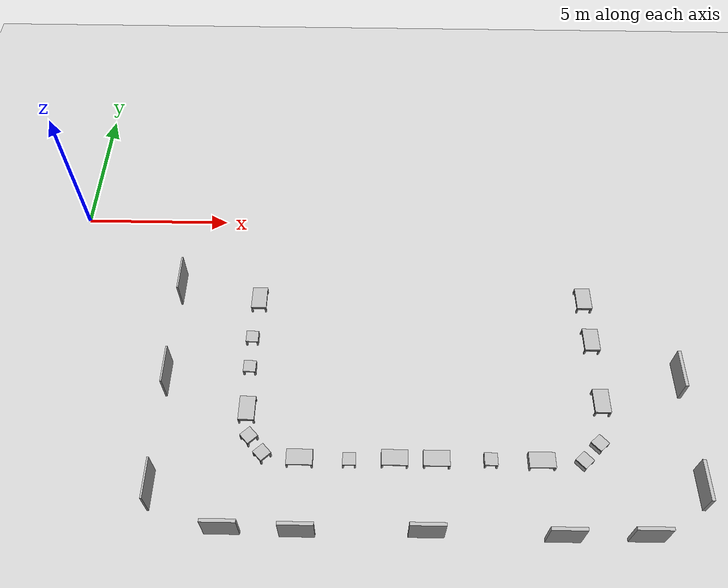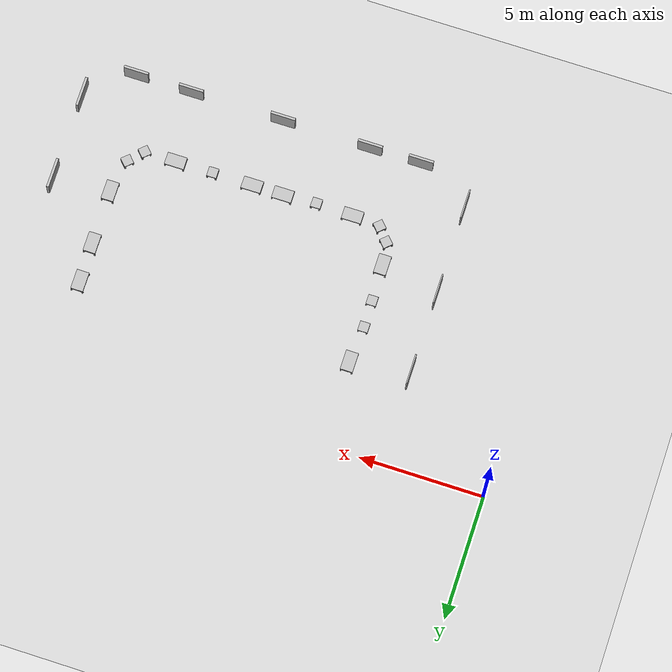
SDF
<sdf version="1.6">
 <world name="default">
  <model name="ground_plane">
   <static>1</static>
   <link name="link">
    <collision name="collision">
     <geometry><plane><normal>0 0 1</normal><size>100 100</size></plane></geometry>
     <surface>
      <contact><collide_bitmask>65535</collide_bitmask></contact>
      <friction><ode><mu>100</mu><mu2>50</mu2></ode></friction>
     </surface>
    </collision>
    <visual name="visual">
     <cast_shadows>0</cast_shadows>
     <geometry><plane><normal>0 0 1</normal><size>100 100</size></plane></geometry>
     <material>
      <script><uri>file://media/materials/scripts/gazebo.material</uri><name>Gazebo/Grey</name></script>
     </material>
    </visual>
   </link>
  </model>
  <model name="chair3">
   <link name="link">
    <inertial>
     <mass>3</mass>
     <inertia><ixx>1</ixx><ixy>0</ixy><ixz>0</ixz><iyy>1</iyy><iyz>0</iyz><izz>1</izz></inertia>
    </inertial>
    <collision name="left1">
     <pose>0 0.225 0.2 0 -0 1.57</pose>
     <geometry><box><size>0.05 0.05 0.2</size></box></geometry>
    </collision>
    <visual name="visual1">
     <pose>0 0.225 0.2 0 -0 1.57</pose>
     <geometry><box><size>0.05 0.05 0.2</size></box></geometry>
     <material>
      <script>
       <uri>model://chair3/materials/test_texture_leg.material</uri>
       <name>TestTexturechairleg3</name>
      </script>
     </material>
    </visual>
    <collision name="right1">
     <pose>0.75 0.225 0.2 0 -0 1.57</pose>
     <geometry><box><size>0.05 0.05 0.2</size></box></geometry>
    </collision>
    <visual name="visual2">
     <pose>0.75 0.225 0.2 0 -0 1.57</pose>
     <geometry><box><size>0.05 0.05 0.2</size></box></geometry>
     <material>
      <script>
       <uri>model://chair3/materials/test_texture_leg.material</uri>
       <name>TestTexturechairleg3</name>
      </script>
     </material>
    </visual>
    <collision name="left2">
     <pose>0 -0.225 0.2 0 -0 1.57</pose>
     <geometry><box><size>0.05 0.05 0.2</size></box></geometry>
    </collision>
    <visual name="visual3">
     <pose>0 -0.225 0.2 0 -0 1.57</pose>
     <geometry><box><size>0.05 0.05 0.2</size></box></geometry>
     <material>
      <script>
       <uri>model://chair3/materials/test_texture_leg.material</uri>
       <name>TestTexturechairleg3</name>
      </script>
     </material>
    </visual>
    <collision name="right2">
     <pose>0.75 -0.225 0.2 0 -0 1.57</pose>
     <geometry><box><size>0.05 0.05 0.2</size></box></geometry>
    </collision>
    <visual name="visual4">
     <pose>0.75 -0.225 0.2 0 -0 1.57</pose>
     <geometry><box><size>0.05 0.05 0.2</size></box></geometry>
     <material>
      <script>
       <uri>model://chair3/materials/test_texture_leg.material</uri>
       <name>TestTexturechairleg3</name>
      </script>
     </material>
    </visual>
    <collision name="top">
     <pose>0.375 0 0.375 0 -0 0</pose>
     <geometry><box><size>0.8 0.5 0.05</size></box></geometry>
    </collision>
    <visual name="visual11">
     <pose>0.375 0 0.375 0 -0 0</pose>
     <geometry><box><size>0.8 0.5 0.05</size></box></geometry>
     <material>
      <script>
       <uri>model://chair3/materials/test_texture_plane.material</uri>
       <name>TestTexturechairplane3</name>
      </script>
     </material>
    </visual>
    <collision name="top2">
     <pose>0.375 0 0.325 0 -0 0</pose>
     <geometry><box><size>0.8 0.5 0.05</size></box></geometry>
    </collision>
    <visual name="visual12">
     <pose>0.375 0 0.325 0 -0 0</pose>
     <geometry><box><size>0.8 0.5 0.05</size></box></geometry>
     <material>
      <script>
       <uri>model://chair3/materials/test_texture_leg.material</uri>
       <name>TestTexturechairleg3</name>
      </script>
     </material>
    </visual>
   </link>
   <pose>17.4534 -3.67478 -0.090008 2e-06 -0 1.56996</pose>
  </model>
  <model name="chair3_clone">
   <link name="link">
    <inertial>
     <mass>3</mass>
     <inertia><ixx>1</ixx><ixy>0</ixy><ixz>0</ixz><iyy>1</iyy><iyz>0</iyz><izz>1</izz></inertia>
    </inertial>
    <collision name="left1">
     <pose>0 0.225 0.2 0 -0 1.57</pose>
     <geometry><box><size>0.05 0.05 0.2</size></box></geometry>
    </collision>
    <visual name="visual1">
     <pose>0 0.225 0.2 0 -0 1.57</pose>
     <geometry><box><size>0.05 0.05 0.2</size></box></geometry>
     <material>
      <script>
       <uri>model://chair3/materials/test_texture_leg.material</uri>
       <name>TestTexturechairleg3</name>
      </script>
     </material>
    </visual>
    <collision name="right1">
     <pose>0.75 0.225 0.2 0 -0 1.57</pose>
     <geometry><box><size>0.05 0.05 0.2</size></box></geometry>
    </collision>
    <visual name="visual2">
     <pose>0.75 0.225 0.2 0 -0 1.57</pose>
     <geometry><box><size>0.05 0.05 0.2</size></box></geometry>
     <material>
      <script>
       <uri>model://chair3/materials/test_texture_leg.material</uri>
       <name>TestTexturechairleg3</name>
      </script>
     </material>
    </visual>
    <collision name="left2">
     <pose>0 -0.225 0.2 0 -0 1.57</pose>
     <geometry><box><size>0.05 0.05 0.2</size></box></geometry>
    </collision>
    <visual name="visual3">
     <pose>0 -0.225 0.2 0 -0 1.57</pose>
     <geometry><box><size>0.05 0.05 0.2</size></box></geometry>
     <material>
      <script>
       <uri>model://chair3/materials/test_texture_leg.material</uri>
       <name>TestTexturechairleg3</name>
      </script>
     </material>
    </visual>
    <collision name="right2">
     <pose>0.75 -0.225 0.2 0 -0 1.57</pose>
     <geometry><box><size>0.05 0.05 0.2</size></box></geometry>
    </collision>
    <visual name="visual4">
     <pose>0.75 -0.225 0.2 0 -0 1.57</pose>
     <geometry><box><size>0.05 0.05 0.2</size></box></geometry>
     <material>
      <script>
       <uri>model://chair3/materials/test_texture_leg.material</uri>
       <name>TestTexturechairleg3</name>
      </script>
     </material>
    </visual>
    <collision name="top">
     <pose>0.375 0 0.375 0 -0 0</pose>
     <geometry><box><size>0.8 0.5 0.05</size></box></geometry>
    </collision>
    <visual name="visual11">
     <pose>0.375 0 0.375 0 -0 0</pose>
     <geometry><box><size>0.8 0.5 0.05</size></box></geometry>
     <material>
      <script>
       <uri>model://chair3/materials/test_texture_plane.material</uri>
       <name>TestTexturechairplane3</name>
      </script>
     </material>
    </visual>
    <collision name="top2">
     <pose>0.375 0 0.325 0 -0 0</pose>
     <geometry><box><size>0.8 0.5 0.05</size></box></geometry>
    </collision>
    <visual name="visual12">
     <pose>0.375 0 0.325 0 -0 0</pose>
     <geometry><box><size>0.8 0.5 0.05</size></box></geometry>
     <material>
      <script>
       <uri>model://chair3/materials/test_texture_leg.material</uri>
       <name>TestTexturechairleg3</name>
      </script>
     </material>
    </visual>
   </link>
   <pose>17.4959 -5.27853 -0.090002 -2e-06 -0 1.56997</pose>
  </model>
  <model name="chair3_clone_clone">
   <link name="link">
    <inertial>
     <mass>3</mass>
     <inertia><ixx>1</ixx><ixy>0</ixy><ixz>0</ixz><iyy>1</iyy><iyz>0</iyz><izz>1</izz></inertia>
    </inertial>
    <collision name="left1">
     <pose>0 0.225 0.2 0 -0 1.57</pose>
     <geometry><box><size>0.05 0.05 0.2</size></box></geometry>
    </collision>
    <visual name="visual1">
     <pose>0 0.225 0.2 0 -0 1.57</pose>
     <geometry><box><size>0.05 0.05 0.2</size></box></geometry>
     <material>
      <script>
       <uri>model://chair3/materials/test_texture_leg.material</uri>
       <name>TestTexturechairleg3</name>
      </script>
     </material>
    </visual>
    <collision name="right1">
     <pose>0.75 0.225 0.2 0 -0 1.57</pose>
     <geometry><box><size>0.05 0.05 0.2</size></box></geometry>
    </collision>
    <visual name="visual2">
     <pose>0.75 0.225 0.2 0 -0 1.57</pose>
     <geometry><box><size>0.05 0.05 0.2</size></box></geometry>
     <material>
      <script>
       <uri>model://chair3/materials/test_texture_leg.material</uri>
       <name>TestTexturechairleg3</name>
      </script>
     </material>
    </visual>
    <collision name="left2">
     <pose>0 -0.225 0.2 0 -0 1.57</pose>
     <geometry><box><size>0.05 0.05 0.2</size></box></geometry>
    </collision>
    <visual name="visual3">
     <pose>0 -0.225 0.2 0 -0 1.57</pose>
     <geometry><box><size>0.05 0.05 0.2</size></box></geometry>
     <material>
      <script>
       <uri>model://chair3/materials/test_texture_leg.material</uri>
       <name>TestTexturechairleg3</name>
      </script>
     </material>
    </visual>
    <collision name="right2">
     <pose>0.75 -0.225 0.2 0 -0 1.57</pose>
     <geometry><box><size>0.05 0.05 0.2</size></box></geometry>
    </collision>
    <visual name="visual4">
     <pose>0.75 -0.225 0.2 0 -0 1.57</pose>
     <geometry><box><size>0.05 0.05 0.2</size></box></geometry>
     <material>
      <script>
       <uri>model://chair3/materials/test_texture_leg.material</uri>
       <name>TestTexturechairleg3</name>
      </script>
     </material>
    </visual>
    <collision name="top">
     <pose>0.375 0 0.375 0 -0 0</pose>
     <geometry><box><size>0.8 0.5 0.05</size></box></geometry>
    </collision>
    <visual name="visual11">
     <pose>0.375 0 0.375 0 -0 0</pose>
     <geometry><box><size>0.8 0.5 0.05</size></box></geometry>
     <material>
      <script>
       <uri>model://chair3/materials/test_texture_plane.material</uri>
       <name>TestTexturechairplane3</name>
      </script>
     </material>
    </visual>
    <collision name="top2">
     <pose>0.375 0 0.325 0 -0 0</pose>
     <geometry><box><size>0.8 0.5 0.05</size></box></geometry>
    </collision>
    <visual name="visual12">
     <pose>0.375 0 0.325 0 -0 0</pose>
     <geometry><box><size>0.8 0.5 0.05</size></box></geometry>
     <material>
      <script>
       <uri>model://chair3/materials/test_texture_leg.material</uri>
       <name>TestTexturechairleg3</name>
      </script>
     </material>
    </visual>
   </link>
   <pose>17.5105 -7.50326 -0.090009 1e-06 -0 1.56995</pose>
  </model>
  <model name="chair2_3">
   <link name="link">
    <inertial>
     <mass>1.5</mass>
     <inertia><ixx>1</ixx><ixy>0</ixy><ixz>0</ixz><iyy>1</iyy><iyz>0</iyz><izz>1</izz></inertia>
    </inertial>
    <collision name="left">
     <pose>0 0 0.2 0 -0 1.57</pose>
     <geometry><box><size>0.4 0.05 0.2</size></box></geometry>
    </collision>
    <visual name="visual1">
     <pose>0 0 0.2 0 -0 1.57</pose>
     <geometry><box><size>0.4 0.05 0.2</size></box></geometry>
     <material>
      <script>
       <uri>model://chair2/materials/test_texture_leg.material</uri>
       <name>TestTexturechairleg2</name>
      </script>
     </material>
    </visual>
    <collision name="right">
     <pose>0.35 0 0.2 0 -0 1.57</pose>
     <geometry><box><size>0.4 0.05 0.2</size></box></geometry>
    </collision>
    <visual name="visual2">
     <pose>0.35 0 0.2 0 -0 1.57</pose>
     <geometry><box><size>0.4 0.05 0.2</size></box></geometry>
     <material>
      <script>
       <uri>model://chair2/materials/test_texture_leg.material</uri>
       <name>TestTexturechairleg2</name>
      </script>
     </material>
    </visual>
    <collision name="top">
     <pose>0.175 0 0.325 0 -0 0</pose>
     <geometry><box><size>0.4 0.4 0.05</size></box></geometry>
    </collision>
    <visual name="visual3">
     <pose>0.175 0 0.325 0 -0 0</pose>
     <geometry><box><size>0.4 0.4 0.05</size></box></geometry>
     <material>
      <script>
       <uri>model://chair2/materials/test_texture_plane.material</uri>
       <name>TestTexturechairplane2</name>
      </script>
     </material>
    </visual>
   </link>
   <pose>17.1463 -8.63413 -0.090009 0 -0 0.750016</pose>
  </model>
  <model name="chair2_3_clone">
   <link name="link">
    <inertial>
     <mass>1.5</mass>
     <inertia><ixx>1</ixx><ixy>0</ixy><ixz>0</ixz><iyy>1</iyy><iyz>0</iyz><izz>1</izz></inertia>
    </inertial>
    <collision name="left">
     <pose>0 0 0.2 0 -0 1.57</pose>
     <geometry><box><size>0.4 0.05 0.2</size></box></geometry>
    </collision>
    <visual name="visual1">
     <pose>0 0 0.2 0 -0 1.57</pose>
     <geometry><box><size>0.4 0.05 0.2</size></box></geometry>
     <material>
      <script>
       <uri>model://chair2/materials/test_texture_leg.material</uri>
       <name>TestTexturechairleg2</name>
      </script>
     </material>
    </visual>
    <collision name="right">
     <pose>0.35 0 0.2 0 -0 1.57</pose>
     <geometry><box><size>0.4 0.05 0.2</size></box></geometry>
    </collision>
    <visual name="visual2">
     <pose>0.35 0 0.2 0 -0 1.57</pose>
     <geometry><box><size>0.4 0.05 0.2</size></box></geometry>
     <material>
      <script>
       <uri>model://chair2/materials/test_texture_leg.material</uri>
       <name>TestTexturechairleg2</name>
      </script>
     </material>
    </visual>
    <collision name="top">
     <pose>0.175 0 0.325 0 -0 0</pose>
     <geometry><box><size>0.4 0.4 0.05</size></box></geometry>
    </collision>
    <visual name="visual3">
     <pose>0.175 0 0.325 0 -0 0</pose>
     <geometry><box><size>0.4 0.4 0.05</size></box></geometry>
     <material>
      <script>
       <uri>model://chair2/materials/test_texture_plane.material</uri>
       <name>TestTexturechairplane2</name>
      </script>
     </material>
    </visual>
   </link>
   <pose>16.613 -9.19811 -0.090001 0 -0 0.749984</pose>
  </model>
  <model name="chair1_5">
   <link name="link">
    <inertial>
     <mass>3</mass>
     <inertia><ixx>1</ixx><ixy>0</ixy><ixz>0</ixz><iyy>1</iyy><iyz>0</iyz><izz>1</izz></inertia>
    </inertial>
    <collision name="left">
     <pose>0 0 0.2 0 -0 1.57</pose>
     <geometry><box><size>0.5 0.05 0.2</size></box></geometry>
    </collision>
    <visual name="visual1">
     <pose>0 0 0.2 0 -0 1.57</pose>
     <geometry><box><size>0.5 0.05 0.2</size></box></geometry>
     <material>
      <script>
       <uri>model://chair1/materials/test_texture_leg.material</uri>
       <name>TestTexturechairleg1</name>
      </script>
     </material>
    </visual>
    <collision name="right">
     <pose>0.75 0 0.2 0 -0 1.57</pose>
     <geometry><box><size>0.5 0.05 0.2</size></box></geometry>
    </collision>
    <visual name="visual2">
     <pose>0.75 0 0.2 0 -0 1.57</pose>
     <geometry><box><size>0.5 0.05 0.2</size></box></geometry>
     <material>
      <script>
       <uri>model://chair1/materials/test_texture_leg.material</uri>
       <name>TestTexturechairleg1</name>
      </script>
     </material>
    </visual>
    <collision name="top">
     <pose>0.375 0 0.325 0 -0 0</pose>
     <geometry><box><size>0.8 0.5 0.05</size></box></geometry>
    </collision>
    <visual name="visual3">
     <pose>0.375 0 0.325 0 -0 0</pose>
     <geometry><box><size>0.8 0.5 0.05</size></box></geometry>
     <material>
      <script>
       <uri>model://chair1/materials/test_texture_plane.material</uri>
       <name>TestTexturechairplane1</name>
      </script>
     </material>
    </visual>
   </link>
   <pose>15.0855 -9.09833 -0.09 -2e-06 0 0.001381</pose>
  </model>
  <model name="chair2_4">
   <link name="link">
    <inertial>
     <mass>1.5</mass>
     <inertia><ixx>1</ixx><ixy>0</ixy><ixz>0</ixz><iyy>1</iyy><iyz>0</iyz><izz>1</izz></inertia>
    </inertial>
    <collision name="left">
     <pose>0 0 0.2 0 -0 1.57</pose>
     <geometry><box><size>0.4 0.05 0.2</size></box></geometry>
    </collision>
    <visual name="visual1">
     <pose>0 0 0.2 0 -0 1.57</pose>
     <geometry><box><size>0.4 0.05 0.2</size></box></geometry>
     <material>
      <script>
       <uri>model://chair2/materials/test_texture_leg.material</uri>
       <name>TestTexturechairleg2</name>
      </script>
     </material>
    </visual>
    <collision name="right">
     <pose>0.35 0 0.2 0 -0 1.57</pose>
     <geometry><box><size>0.4 0.05 0.2</size></box></geometry>
    </collision>
    <visual name="visual2">
     <pose>0.35 0 0.2 0 -0 1.57</pose>
     <geometry><box><size>0.4 0.05 0.2</size></box></geometry>
     <material>
      <script>
       <uri>model://chair2/materials/test_texture_leg.material</uri>
       <name>TestTexturechairleg2</name>
      </script>
     </material>
    </visual>
    <collision name="top">
     <pose>0.175 0 0.325 0 -0 0</pose>
     <geometry><box><size>0.4 0.4 0.05</size></box></geometry>
    </collision>
    <visual name="visual3">
     <pose>0.175 0 0.325 0 -0 0</pose>
     <geometry><box><size>0.4 0.4 0.05</size></box></geometry>
     <material>
      <script>
       <uri>model://chair2/materials/test_texture_plane.material</uri>
       <name>TestTexturechairplane2</name>
      </script>
     </material>
    </visual>
   </link>
   <pose>13.7564 -9.09833 -0.090001 0 0 -2e-05</pose>
  </model>
  <model name="chair1_6">
   <link name="link">
    <inertial>
     <mass>3</mass>
     <inertia><ixx>1</ixx><ixy>0</ixy><ixz>0</ixz><iyy>1</iyy><iyz>0</iyz><izz>1</izz></inertia>
    </inertial>
    <collision name="left">
     <pose>0 0 0.2 0 -0 1.57</pose>
     <geometry><box><size>0.5 0.05 0.2</size></box></geometry>
    </collision>
    <visual name="visual1">
     <pose>0 0 0.2 0 -0 1.57</pose>
     <geometry><box><size>0.5 0.05 0.2</size></box></geometry>
     <material>
      <script>
       <uri>model://chair1/materials/test_texture_leg.material</uri>
       <name>TestTexturechairleg1</name>
      </script>
     </material>
    </visual>
    <collision name="right">
     <pose>0.75 0 0.2 0 -0 1.57</pose>
     <geometry><box><size>0.5 0.05 0.2</size></box></geometry>
    </collision>
    <visual name="visual2">
     <pose>0.75 0 0.2 0 -0 1.57</pose>
     <geometry><box><size>0.5 0.05 0.2</size></box></geometry>
     <material>
      <script>
       <uri>model://chair1/materials/test_texture_leg.material</uri>
       <name>TestTexturechairleg1</name>
      </script>
     </material>
    </visual>
    <collision name="top">
     <pose>0.375 0 0.325 0 -0 0</pose>
     <geometry><box><size>0.8 0.5 0.05</size></box></geometry>
    </collision>
    <visual name="visual3">
     <pose>0.375 0 0.325 0 -0 0</pose>
     <geometry><box><size>0.8 0.5 0.05</size></box></geometry>
     <material>
      <script>
       <uri>model://chair1/materials/test_texture_plane.material</uri>
       <name>TestTexturechairplane1</name>
      </script>
     </material>
    </visual>
   </link>
   <pose>11.9296 -9.09833 -0.090007 -2e-06 -1e-06 0.001399</pose>
  </model>
  <model name="chair1_7">
   <link name="link">
    <inertial>
     <mass>3</mass>
     <inertia><ixx>1</ixx><ixy>0</ixy><ixz>0</ixz><iyy>1</iyy><iyz>0</iyz><izz>1</izz></inertia>
    </inertial>
    <collision name="left">
     <pose>0 0 0.2 0 -0 1.57</pose>
     <geometry><box><size>0.5 0.05 0.2</size></box></geometry>
    </collision>
    <visual name="visual1">
     <pose>0 0 0.2 0 -0 1.57</pose>
     <geometry><box><size>0.5 0.05 0.2</size></box></geometry>
     <material>
      <script>
       <uri>model://chair1/materials/test_texture_leg.material</uri>
       <name>TestTexturechairleg1</name>
      </script>
     </material>
    </visual>
    <collision name="right">
     <pose>0.75 0 0.2 0 -0 1.57</pose>
     <geometry><box><size>0.5 0.05 0.2</size></box></geometry>
    </collision>
    <visual name="visual2">
     <pose>0.75 0 0.2 0 -0 1.57</pose>
     <geometry><box><size>0.5 0.05 0.2</size></box></geometry>
     <material>
      <script>
       <uri>model://chair1/materials/test_texture_leg.material</uri>
       <name>TestTexturechairleg1</name>
      </script>
     </material>
    </visual>
    <collision name="top">
     <pose>0.375 0 0.325 0 -0 0</pose>
     <geometry><box><size>0.8 0.5 0.05</size></box></geometry>
    </collision>
    <visual name="visual3">
     <pose>0.375 0 0.325 0 -0 0</pose>
     <geometry><box><size>0.8 0.5 0.05</size></box></geometry>
     <material>
      <script>
       <uri>model://chair1/materials/test_texture_plane.material</uri>
       <name>TestTexturechairplane1</name>
      </script>
     </material>
    </visual>
   </link>
   <pose>10.6671 -9.09833 -0.090007 -2e-06 -1e-06 0.001364</pose>
  </model>
  <model name="chair2_5">
   <link name="link">
    <inertial>
     <mass>1.5</mass>
     <inertia><ixx>1</ixx><ixy>0</ixy><ixz>0</ixz><iyy>1</iyy><iyz>0</iyz><izz>1</izz></inertia>
    </inertial>
    <collision name="left">
     <pose>0 0 0.2 0 -0 1.57</pose>
     <geometry><box><size>0.4 0.05 0.2</size></box></geometry>
    </collision>
    <visual name="visual1">
     <pose>0 0 0.2 0 -0 1.57</pose>
     <geometry><box><size>0.4 0.05 0.2</size></box></geometry>
     <material>
      <script>
       <uri>model://chair2/materials/test_texture_leg.material</uri>
       <name>TestTexturechairleg2</name>
      </script>
     </material>
    </visual>
    <collision name="right">
     <pose>0.35 0 0.2 0 -0 1.57</pose>
     <geometry><box><size>0.4 0.05 0.2</size></box></geometry>
    </collision>
    <visual name="visual2">
     <pose>0.35 0 0.2 0 -0 1.57</pose>
     <geometry><box><size>0.4 0.05 0.2</size></box></geometry>
     <material>
      <script>
       <uri>model://chair2/materials/test_texture_leg.material</uri>
       <name>TestTexturechairleg2</name>
      </script>
     </material>
    </visual>
    <collision name="top">
     <pose>0.175 0 0.325 0 -0 0</pose>
     <geometry><box><size>0.4 0.4 0.05</size></box></geometry>
    </collision>
    <visual name="visual3">
     <pose>0.175 0 0.325 0 -0 0</pose>
     <geometry><box><size>0.4 0.4 0.05</size></box></geometry>
     <material>
      <script>
       <uri>model://chair2/materials/test_texture_plane.material</uri>
       <name>TestTexturechairplane2</name>
      </script>
     </material>
    </visual>
   </link>
   <pose>9.5048 -9.16479 -0.09 0 0 -8e-06</pose>
  </model>
  <model name="chair1_8">
   <link name="link">
    <inertial>
     <mass>3</mass>
     <inertia><ixx>1</ixx><ixy>0</ixy><ixz>0</ixz><iyy>1</iyy><iyz>0</iyz><izz>1</izz></inertia>
    </inertial>
    <collision name="left">
     <pose>0 0 0.2 0 -0 1.57</pose>
     <geometry><box><size>0.5 0.05 0.2</size></box></geometry>
    </collision>
    <visual name="visual1">
     <pose>0 0 0.2 0 -0 1.57</pose>
     <geometry><box><size>0.5 0.05 0.2</size></box></geometry>
     <material>
      <script>
       <uri>model://chair1/materials/test_texture_leg.material</uri>
       <name>TestTexturechairleg1</name>
      </script>
     </material>
    </visual>
    <collision name="right">
     <pose>0.75 0 0.2 0 -0 1.57</pose>
     <geometry><box><size>0.5 0.05 0.2</size></box></geometry>
    </collision>
    <visual name="visual2">
     <pose>0.75 0 0.2 0 -0 1.57</pose>
     <geometry><box><size>0.5 0.05 0.2</size></box></geometry>
     <material>
      <script>
       <uri>model://chair1/materials/test_texture_leg.material</uri>
       <name>TestTexturechairleg1</name>
      </script>
     </material>
    </visual>
    <collision name="top">
     <pose>0.375 0 0.325 0 -0 0</pose>
     <geometry><box><size>0.8 0.5 0.05</size></box></geometry>
    </collision>
    <visual name="visual3">
     <pose>0.375 0 0.325 0 -0 0</pose>
     <geometry><box><size>0.8 0.5 0.05</size></box></geometry>
     <material>
      <script>
       <uri>model://chair1/materials/test_texture_plane.material</uri>
       <name>TestTexturechairplane1</name>
      </script>
     </material>
    </visual>
   </link>
   <pose>7.81082 -9.13165 -0.090007 -2e-06 -1e-06 0.001381</pose>
  </model>
  <model name="chair4_clone_clone">
   <link name="link">
    <inertial>
     <mass>1.5</mass>
     <inertia><ixx>1</ixx><ixy>0</ixy><ixz>0</ixz><iyy>1</iyy><iyz>0</iyz><izz>1</izz></inertia>
    </inertial>
    <collision name="left1">
     <pose>0 0.175 0.2 0 -0 1.57</pose>
     <geometry><box><size>0.05 0.05 0.2</size></box></geometry>
    </collision>
    <visual name="visual1">
     <pose>0 0.175 0.2 0 -0 1.57</pose>
     <geometry><box><size>0.05 0.05 0.2</size></box></geometry>
     <material>
      <script>
       <uri>model://chair4/materials/test_texture_leg.material</uri>
       <name>TestTexturechairleg4</name>
      </script>
     </material>
    </visual>
    <collision name="right1">
     <pose>0.35 0.175 0.2 0 -0 1.57</pose>
     <geometry><box><size>0.05 0.05 0.2</size></box></geometry>
    </collision>
    <visual name="visual2">
     <pose>0.35 0.175 0.2 0 -0 1.57</pose>
     <geometry><box><size>0.05 0.05 0.2</size></box></geometry>
     <material>
      <script>
       <uri>model://chair4/materials/test_texture_leg.material</uri>
       <name>TestTexturechairleg4</name>
      </script>
     </material>
    </visual>
    <collision name="left2">
     <pose>0 -0.175 0.2 0 -0 1.57</pose>
     <geometry><box><size>0.05 0.05 0.2</size></box></geometry>
    </collision>
    <visual name="visual3">
     <pose>0 -0.175 0.2 0 -0 1.57</pose>
     <geometry><box><size>0.05 0.05 0.2</size></box></geometry>
     <material>
      <script>
       <uri>model://chair4/materials/test_texture_leg.material</uri>
       <name>TestTexturechairleg4</name>
      </script>
     </material>
    </visual>
    <collision name="right2">
     <pose>0.35 -0.175 0.2 0 -0 1.57</pose>
     <geometry><box><size>0.05 0.05 0.2</size></box></geometry>
    </collision>
    <visual name="visual4">
     <pose>0.35 -0.175 0.2 0 -0 1.57</pose>
     <geometry><box><size>0.05 0.05 0.2</size></box></geometry>
     <material>
      <script>
       <uri>model://chair4/materials/test_texture_leg.material</uri>
       <name>TestTexturechairleg4</name>
      </script>
     </material>
    </visual>
    <collision name="top">
     <pose>0.175 0 0.375 0 -0 0</pose>
     <geometry><box><size>0.4 0.4 0.05</size></box></geometry>
    </collision>
    <visual name="visual11">
     <pose>0.175 0 0.375 0 -0 0</pose>
     <geometry><box><size>0.4 0.4 0.05</size></box></geometry>
     <material>
      <script>
       <uri>model://chair4/materials/test_texture_plane.material</uri>
       <name>TestTexturechairplane4</name>
      </script>
     </material>
    </visual>
    <collision name="top2">
     <pose>0.175 0 0.325 0 -0 0</pose>
     <geometry><box><size>0.4 0.4 0.05</size></box></geometry>
    </collision>
    <visual name="visual12">
     <pose>0.175 0 0.325 0 -0 0</pose>
     <geometry><box><size>0.4 0.4 0.05</size></box></geometry>
     <material>
      <script>
       <uri>model://chair4/materials/test_texture_leg.material</uri>
       <name>TestTexturechairleg4</name>
      </script>
     </material>
    </visual>
   </link>
   <pose>6.92516 -9.14322 -0.090001 1e-06 -1e-06 0.749715</pose>
  </model>
  <model name="chair4_clone_clone_0">
   <link name="link">
    <inertial>
     <mass>1.5</mass>
     <inertia><ixx>1</ixx><ixy>0</ixy><ixz>0</ixz><iyy>1</iyy><iyz>0</iyz><izz>1</izz></inertia>
    </inertial>
    <collision name="left1">
     <pose>0 0.175 0.2 0 -0 1.57</pose>
     <geometry><box><size>0.05 0.05 0.2</size></box></geometry>
    </collision>
    <visual name="visual1">
     <pose>0 0.175 0.2 0 -0 1.57</pose>
     <geometry><box><size>0.05 0.05 0.2</size></box></geometry>
     <material>
      <script>
       <uri>model://chair4/materials/test_texture_leg.material</uri>
       <name>TestTexturechairleg4</name>
      </script>
     </material>
    </visual>
    <collision name="right1">
     <pose>0.35 0.175 0.2 0 -0 1.57</pose>
     <geometry><box><size>0.05 0.05 0.2</size></box></geometry>
    </collision>
    <visual name="visual2">
     <pose>0.35 0.175 0.2 0 -0 1.57</pose>
     <geometry><box><size>0.05 0.05 0.2</size></box></geometry>
     <material>
      <script>
       <uri>model://chair4/materials/test_texture_leg.material</uri>
       <name>TestTexturechairleg4</name>
      </script>
     </material>
    </visual>
    <collision name="left2">
     <pose>0 -0.175 0.2 0 -0 1.57</pose>
     <geometry><box><size>0.05 0.05 0.2</size></box></geometry>
    </collision>
    <visual name="visual3">
     <pose>0 -0.175 0.2 0 -0 1.57</pose>
     <geometry><box><size>0.05 0.05 0.2</size></box></geometry>
     <material>
      <script>
       <uri>model://chair4/materials/test_texture_leg.material</uri>
       <name>TestTexturechairleg4</name>
      </script>
     </material>
    </visual>
    <collision name="right2">
     <pose>0.35 -0.175 0.2 0 -0 1.57</pose>
     <geometry><box><size>0.05 0.05 0.2</size></box></geometry>
    </collision>
    <visual name="visual4">
     <pose>0.35 -0.175 0.2 0 -0 1.57</pose>
     <geometry><box><size>0.05 0.05 0.2</size></box></geometry>
     <material>
      <script>
       <uri>model://chair4/materials/test_texture_leg.material</uri>
       <name>TestTexturechairleg4</name>
      </script>
     </material>
    </visual>
    <collision name="top">
     <pose>0.175 0 0.375 0 -0 0</pose>
     <geometry><box><size>0.4 0.4 0.05</size></box></geometry>
    </collision>
    <visual name="visual11">
     <pose>0.175 0 0.375 0 -0 0</pose>
     <geometry><box><size>0.4 0.4 0.05</size></box></geometry>
     <material>
      <script>
       <uri>model://chair4/materials/test_texture_plane.material</uri>
       <name>TestTexturechairplane4</name>
      </script>
     </material>
    </visual>
    <collision name="top2">
     <pose>0.175 0 0.325 0 -0 0</pose>
     <geometry><box><size>0.4 0.4 0.05</size></box></geometry>
    </collision>
    <visual name="visual12">
     <pose>0.175 0 0.325 0 -0 0</pose>
     <geometry><box><size>0.4 0.4 0.05</size></box></geometry>
     <material>
      <script>
       <uri>model://chair4/materials/test_texture_leg.material</uri>
       <name>TestTexturechairleg4</name>
      </script>
     </material>
    </visual>
   </link>
   <pose>6.48213 -8.60002 -0.090008 -1e-06 -1e-06 0.74974</pose>
  </model>
  <model name="chair3_clone_0">
   <link name="link">
    <inertial>
     <mass>3</mass>
     <inertia><ixx>1</ixx><ixy>0</ixy><ixz>0</ixz><iyy>1</iyy><iyz>0</iyz><izz>1</izz></inertia>
    </inertial>
    <collision name="left1">
     <pose>0 0.225 0.2 0 -0 1.57</pose>
     <geometry><box><size>0.05 0.05 0.2</size></box></geometry>
    </collision>
    <visual name="visual1">
     <pose>0 0.225 0.2 0 -0 1.57</pose>
     <geometry><box><size>0.05 0.05 0.2</size></box></geometry>
     <material>
      <script>
       <uri>model://chair3/materials/test_texture_leg.material</uri>
       <name>TestTexturechairleg3</name>
      </script>
     </material>
    </visual>
    <collision name="right1">
     <pose>0.75 0.225 0.2 0 -0 1.57</pose>
     <geometry><box><size>0.05 0.05 0.2</size></box></geometry>
    </collision>
    <visual name="visual2">
     <pose>0.75 0.225 0.2 0 -0 1.57</pose>
     <geometry><box><size>0.05 0.05 0.2</size></box></geometry>
     <material>
      <script>
       <uri>model://chair3/materials/test_texture_leg.material</uri>
       <name>TestTexturechairleg3</name>
      </script>
     </material>
    </visual>
    <collision name="left2">
     <pose>0 -0.225 0.2 0 -0 1.57</pose>
     <geometry><box><size>0.05 0.05 0.2</size></box></geometry>
    </collision>
    <visual name="visual3">
     <pose>0 -0.225 0.2 0 -0 1.57</pose>
     <geometry><box><size>0.05 0.05 0.2</size></box></geometry>
     <material>
      <script>
       <uri>model://chair3/materials/test_texture_leg.material</uri>
       <name>TestTexturechairleg3</name>
      </script>
     </material>
    </visual>
    <collision name="right2">
     <pose>0.75 -0.225 0.2 0 -0 1.57</pose>
     <geometry><box><size>0.05 0.05 0.2</size></box></geometry>
    </collision>
    <visual name="visual4">
     <pose>0.75 -0.225 0.2 0 -0 1.57</pose>
     <geometry><box><size>0.05 0.05 0.2</size></box></geometry>
     <material>
      <script>
       <uri>model://chair3/materials/test_texture_leg.material</uri>
       <name>TestTexturechairleg3</name>
      </script>
     </material>
    </visual>
    <collision name="top">
     <pose>0.375 0 0.375 0 -0 0</pose>
     <geometry><box><size>0.8 0.5 0.05</size></box></geometry>
    </collision>
    <visual name="visual11">
     <pose>0.375 0 0.375 0 -0 0</pose>
     <geometry><box><size>0.8 0.5 0.05</size></box></geometry>
     <material>
      <script>
       <uri>model://chair3/materials/test_texture_plane.material</uri>
       <name>TestTexturechairplane3</name>
      </script>
     </material>
    </visual>
    <collision name="top2">
     <pose>0.375 0 0.325 0 -0 0</pose>
     <geometry><box><size>0.8 0.5 0.05</size></box></geometry>
    </collision>
    <visual name="visual12">
     <pose>0.375 0 0.325 0 -0 0</pose>
     <geometry><box><size>0.8 0.5 0.05</size></box></geometry>
     <material>
      <script>
       <uri>model://chair3/materials/test_texture_leg.material</uri>
       <name>TestTexturechairleg3</name>
      </script>
     </material>
    </visual>
   </link>
   <pose>6.46976 -7.94245 -0.090009 1e-06 -0 1.56993</pose>
  </model>
  <model name="chair3_clone_1">
   <link name="link">
    <inertial>
     <mass>3</mass>
     <inertia><ixx>1</ixx><ixy>0</ixy><ixz>0</ixz><iyy>1</iyy><iyz>0</iyz><izz>1</izz></inertia>
    </inertial>
    <collision name="left1">
     <pose>0 0.225 0.2 0 -0 1.57</pose>
     <geometry><box><size>0.05 0.05 0.2</size></box></geometry>
    </collision>
    <visual name="visual1">
     <pose>0 0.225 0.2 0 -0 1.57</pose>
     <geometry><box><size>0.05 0.05 0.2</size></box></geometry>
     <material>
      <script>
       <uri>model://chair3/materials/test_texture_leg.material</uri>
       <name>TestTexturechairleg3</name>
      </script>
     </material>
    </visual>
    <collision name="right1">
     <pose>0.75 0.225 0.2 0 -0 1.57</pose>
     <geometry><box><size>0.05 0.05 0.2</size></box></geometry>
    </collision>
    <visual name="visual2">
     <pose>0.75 0.225 0.2 0 -0 1.57</pose>
     <geometry><box><size>0.05 0.05 0.2</size></box></geometry>
     <material>
      <script>
       <uri>model://chair3/materials/test_texture_leg.material</uri>
       <name>TestTexturechairleg3</name>
      </script>
     </material>
    </visual>
    <collision name="left2">
     <pose>0 -0.225 0.2 0 -0 1.57</pose>
     <geometry><box><size>0.05 0.05 0.2</size></box></geometry>
    </collision>
    <visual name="visual3">
     <pose>0 -0.225 0.2 0 -0 1.57</pose>
     <geometry><box><size>0.05 0.05 0.2</size></box></geometry>
     <material>
      <script>
       <uri>model://chair3/materials/test_texture_leg.material</uri>
       <name>TestTexturechairleg3</name>
      </script>
     </material>
    </visual>
    <collision name="right2">
     <pose>0.75 -0.225 0.2 0 -0 1.57</pose>
     <geometry><box><size>0.05 0.05 0.2</size></box></geometry>
    </collision>
    <visual name="visual4">
     <pose>0.75 -0.225 0.2 0 -0 1.57</pose>
     <geometry><box><size>0.05 0.05 0.2</size></box></geometry>
     <material>
      <script>
       <uri>model://chair3/materials/test_texture_leg.material</uri>
       <name>TestTexturechairleg3</name>
      </script>
     </material>
    </visual>
    <collision name="top">
     <pose>0.375 0 0.375 0 -0 0</pose>
     <geometry><box><size>0.8 0.5 0.05</size></box></geometry>
    </collision>
    <visual name="visual11">
     <pose>0.375 0 0.375 0 -0 0</pose>
     <geometry><box><size>0.8 0.5 0.05</size></box></geometry>
     <material>
      <script>
       <uri>model://chair3/materials/test_texture_plane.material</uri>
       <name>TestTexturechairplane3</name>
      </script>
     </material>
    </visual>
    <collision name="top2">
     <pose>0.375 0 0.325 0 -0 0</pose>
     <geometry><box><size>0.8 0.5 0.05</size></box></geometry>
    </collision>
    <visual name="visual12">
     <pose>0.375 0 0.325 0 -0 0</pose>
     <geometry><box><size>0.8 0.5 0.05</size></box></geometry>
     <material>
      <script>
       <uri>model://chair3/materials/test_texture_leg.material</uri>
       <name>TestTexturechairleg3</name>
      </script>
     </material>
    </visual>
   </link>
   <pose>6.5093 -3.83546 -0.090008 1e-06 -0 1.56998</pose>
  </model>
  <model name="chair2_6">
   <link name="link">
    <inertial>
     <mass>1.5</mass>
     <inertia><ixx>1</ixx><ixy>0</ixy><ixz>0</ixz><iyy>1</iyy><iyz>0</iyz><izz>1</izz></inertia>
    </inertial>
    <collision name="left">
     <pose>0 0 0.2 0 -0 1.57</pose>
     <geometry><box><size>0.4 0.05 0.2</size></box></geometry>
    </collision>
    <visual name="visual1">
     <pose>0 0 0.2 0 -0 1.57</pose>
     <geometry><box><size>0.4 0.05 0.2</size></box></geometry>
     <material>
      <script>
       <uri>model://chair2/materials/test_texture_leg.material</uri>
       <name>TestTexturechairleg2</name>
      </script>
     </material>
    </visual>
    <collision name="right">
     <pose>0.35 0 0.2 0 -0 1.57</pose>
     <geometry><box><size>0.4 0.05 0.2</size></box></geometry>
    </collision>
    <visual name="visual2">
     <pose>0.35 0 0.2 0 -0 1.57</pose>
     <geometry><box><size>0.4 0.05 0.2</size></box></geometry>
     <material>
      <script>
       <uri>model://chair2/materials/test_texture_leg.material</uri>
       <name>TestTexturechairleg2</name>
      </script>
     </material>
    </visual>
    <collision name="top">
     <pose>0.175 0 0.325 0 -0 0</pose>
     <geometry><box><size>0.4 0.4 0.05</size></box></geometry>
    </collision>
    <visual name="visual3">
     <pose>0.175 0 0.325 0 -0 0</pose>
     <geometry><box><size>0.4 0.4 0.05</size></box></geometry>
     <material>
      <script>
       <uri>model://chair2/materials/test_texture_plane.material</uri>
       <name>TestTexturechairplane2</name>
      </script>
     </material>
    </visual>
   </link>
   <pose>6.23806 -6.0697 -0.090008 -0 -0 -1e-06</pose>
  </model>
  <model name="chair2_7">
   <link name="link">
    <inertial>
     <mass>1.5</mass>
     <inertia><ixx>1</ixx><ixy>0</ixy><ixz>0</ixz><iyy>1</iyy><iyz>0</iyz><izz>1</izz></inertia>
    </inertial>
    <collision name="left">
     <pose>0 0 0.2 0 -0 1.57</pose>
     <geometry><box><size>0.4 0.05 0.2</size></box></geometry>
    </collision>
    <visual name="visual1">
     <pose>0 0 0.2 0 -0 1.57</pose>
     <geometry><box><size>0.4 0.05 0.2</size></box></geometry>
     <material>
      <script>
       <uri>model://chair2/materials/test_texture_leg.material</uri>
       <name>TestTexturechairleg2</name>
      </script>
     </material>
    </visual>
    <collision name="right">
     <pose>0.35 0 0.2 0 -0 1.57</pose>
     <geometry><box><size>0.4 0.05 0.2</size></box></geometry>
    </collision>
    <visual name="visual2">
     <pose>0.35 0 0.2 0 -0 1.57</pose>
     <geometry><box><size>0.4 0.05 0.2</size></box></geometry>
     <material>
      <script>
       <uri>model://chair2/materials/test_texture_leg.material</uri>
       <name>TestTexturechairleg2</name>
      </script>
     </material>
    </visual>
    <collision name="top">
     <pose>0.175 0 0.325 0 -0 0</pose>
     <geometry><box><size>0.4 0.4 0.05</size></box></geometry>
    </collision>
    <visual name="visual3">
     <pose>0.175 0 0.325 0 -0 0</pose>
     <geometry><box><size>0.4 0.4 0.05</size></box></geometry>
     <material>
      <script>
       <uri>model://chair2/materials/test_texture_plane.material</uri>
       <name>TestTexturechairplane2</name>
      </script>
     </material>
    </visual>
   </link>
   <pose>6.22224 -4.95907 -0.090009 0 -0 -7e-06</pose>
  </model>
  <model name="art2">
   <static>1</static>
   <pose>4.07578 -10.4668 1.31317 0 -0 1.57</pose>
   <link name="link">
    <inertial>
     <mass>1</mass>
     <inertia><ixx>0.083</ixx><ixy>0</ixy><ixz>0</ixz><iyy>0.083</iyy><iyz>0</iyz><izz>0.083</izz></inertia>
    </inertial>
    <collision name="collision"><geometry><box><size>1.2 0.05 1</size></box></geometry></collision>
    <visual name="visual">
     <geometry><box><size>1.2 0.05 1</size></box></geometry>
     <material>
      <script><uri>model://art12/materials/test_texture12.material</uri><name>TestTexture12</name></script>
     </material>
    </visual>
   </link>
  </model>
  <model name="art2_0">
   <static>1</static>
   <pose>17.9001 -11.6652 1.38462 0 -0 0</pose>
   <link name="link">
    <inertial>
     <mass>1</mass>
     <inertia><ixx>0.083</ixx><ixy>0</ixy><ixz>0</ixz><iyy>0.083</iyy><iyz>0</iyz><izz>0.083</izz></inertia>
    </inertial>
    <collision name="collision"><geometry><box><size>1 0.1 1</size></box></geometry></collision>
    <visual name="visual">
     <geometry><box><size>1 0.1 1</size></box></geometry>
     <material>
      <script><uri>model://art2/materials/test_texture2.material</uri><name>TestTexture2</name></script>
     </material>
    </visual>
   </link>
  </model>
  <model name="art3">
   <static>1</static>
   <pose>15.6414 -11.6793 1.28157 0 -0 0</pose>
   <link name="link">
    <inertial>
     <mass>1</mass>
     <inertia><ixx>0.083</ixx><ixy>0</ixy><ixz>0</ixz><iyy>0.083</iyy><iyz>0</iyz><izz>0.083</izz></inertia>
    </inertial>
    <collision name="collision"><geometry><box><size>1 0.1 1</size></box></geometry></collision>
    <visual name="visual">
     <geometry><box><size>1 0.1 1</size></box></geometry>
     <material>
      <script><uri>model://art3/materials/test_texture3.material</uri><name>TestTexture3</name></script>
     </material>
    </visual>
   </link>
  </model>
  <model name="art11_clone_0">
   <static>1</static>
   <pose>19.67 -6.72295 1.3304 0 -0 1.57</pose>
   <link name="link">
    <inertial>
     <mass>1</mass>
     <inertia><ixx>0.083</ixx><ixy>0</ixy><ixz>0</ixz><iyy>0.083</iyy><iyz>0</iyz><izz>0.083</izz></inertia>
    </inertial>
    <collision name="collision"><geometry><box><size>1.2 0.1 0.8</size></box></geometry></collision>
    <visual name="visual">
     <geometry><box><size>1.2 0.1 0.8</size></box></geometry>
     <material>
      <script><uri>model://art11/materials/test_texture11.material</uri><name>TestTexture11</name></script>
     </material>
    </visual>
   </link>
  </model>
  <model name="art11_clone_1">
   <static>1</static>
   <pose>19.666 -10.2209 1.3304 0 -0 1.57</pose>
   <link name="link">
    <inertial>
     <mass>1</mass>
     <inertia><ixx>0.083</ixx><ixy>0</ixy><ixz>0</ixz><iyy>0.083</iyy><iyz>0</iyz><izz>0.083</izz></inertia>
    </inertial>
    <collision name="collision"><geometry><box><size>1.2 0.1 0.8</size></box></geometry></collision>
    <visual name="visual">
     <geometry><box><size>1.2 0.1 0.8</size></box></geometry>
     <material>
      <script><uri>model://art11/materials/test_texture11.material</uri><name>TestTexture11</name></script>
     </material>
    </visual>
   </link>
  </model>
  <model name="art2_0_clone">
   <static>1</static>
   <pose>11.8664 -11.6558 1.38462 0 -0 0</pose>
   <link name="link">
    <inertial>
     <mass>1</mass>
     <inertia><ixx>0.083</ixx><ixy>0</ixy><ixz>0</ixz><iyy>0.083</iyy><iyz>0</iyz><izz>0.083</izz></inertia>
    </inertial>
    <collision name="collision"><geometry><box><size>1 0.1 1</size></box></geometry></collision>
    <visual name="visual">
     <geometry><box><size>1 0.1 1</size></box></geometry>
     <material>
      <script><uri>model://art2/materials/test_texture2.material</uri><name>TestTexture2</name></script>
     </material>
    </visual>
   </link>
  </model>
  <model name="art2_0_clone_0">
   <static>1</static>
   <pose>6.23529 -11.6612 1.38462 0 -0 0</pose>
   <link name="link">
    <inertial>
     <mass>1</mass>
     <inertia><ixx>0.083</ixx><ixy>0</ixy><ixz>0</ixz><iyy>0.083</iyy><iyz>0</iyz><izz>0.083</izz></inertia>
    </inertial>
    <collision name="collision"><geometry><box><size>1 0.1 1</size></box></geometry></collision>
    <visual name="visual">
     <geometry><box><size>1 0.1 1</size></box></geometry>
     <material>
      <script><uri>model://art2/materials/test_texture2.material</uri><name>TestTexture2</name></script>
     </material>
    </visual>
   </link>
  </model>
  <model name="art3_clone">
   <static>1</static>
   <pose>8.30813 -11.6667 1.28157 0 -0 0</pose>
   <link name="link">
    <inertial>
     <mass>1</mass>
     <inertia><ixx>0.083</ixx><ixy>0</ixy><ixz>0</ixz><iyy>0.083</iyy><iyz>0</iyz><izz>0.083</izz></inertia>
    </inertial>
    <collision name="collision"><geometry><box><size>1 0.1 1</size></box></geometry></collision>
    <visual name="visual">
     <geometry><box><size>1 0.1 1</size></box></geometry>
     <material>
      <script><uri>model://art3/materials/test_texture3.material</uri><name>TestTexture3</name></script>
     </material>
    </visual>
   </link>
  </model>
  <model name="art2_clone">
   <static>1</static>
   <pose>4.0616 -6.8845 1.31317 0 -0 1.57</pose>
   <link name="link">
    <inertial>
     <mass>1</mass>
     <inertia><ixx>0.083</ixx><ixy>0</ixy><ixz>0</ixz><iyy>0.083</iyy><iyz>0</iyz><izz>0.083</izz></inertia>
    </inertial>
    <collision name="collision"><geometry><box><size>1.2 0.05 1</size></box></geometry></collision>
    <visual name="visual">
     <geometry><box><size>1.2 0.05 1</size></box></geometry>
     <material>
      <script><uri>model://art12/materials/test_texture12.material</uri><name>TestTexture12</name></script>
     </material>
    </visual>
   </link>
  </model>
  <model name="art2_clone_0">
   <static>1</static>
   <pose>4.07824 -3.5207 1.31317 0 -0 1.57</pose>
   <link name="link">
    <inertial>
     <mass>1</mass>
     <inertia><ixx>0.083</ixx><ixy>0</ixy><ixz>0</ixz><iyy>0.083</iyy><iyz>0</iyz><izz>0.083</izz></inertia>
    </inertial>
    <collision name="collision"><geometry><box><size>1.2 0.05 1</size></box></geometry></collision>
    <visual name="visual">
     <geometry><box><size>1.2 0.05 1</size></box></geometry>
     <material>
      <script><uri>model://art12/materials/test_texture12.material</uri><name>TestTexture12</name></script>
     </material>
    </visual>
   </link>
  </model>
 </world>
</sdf>
